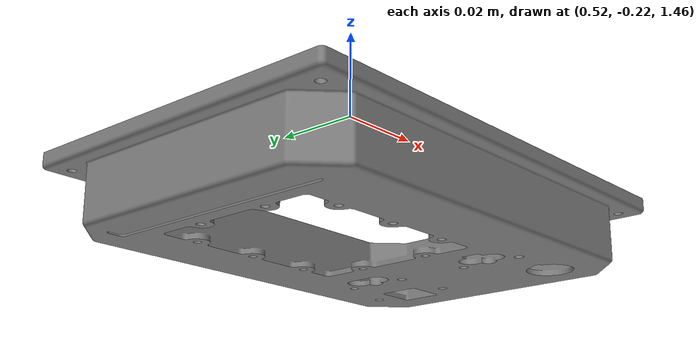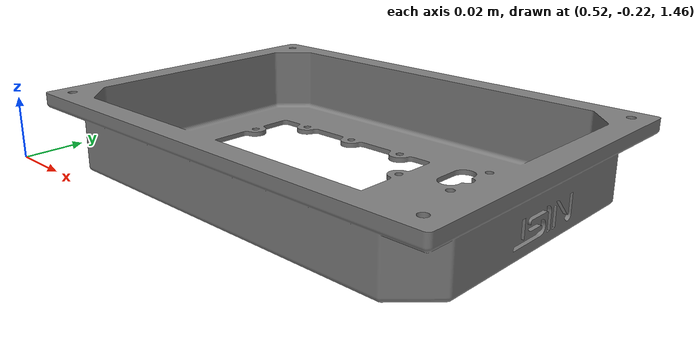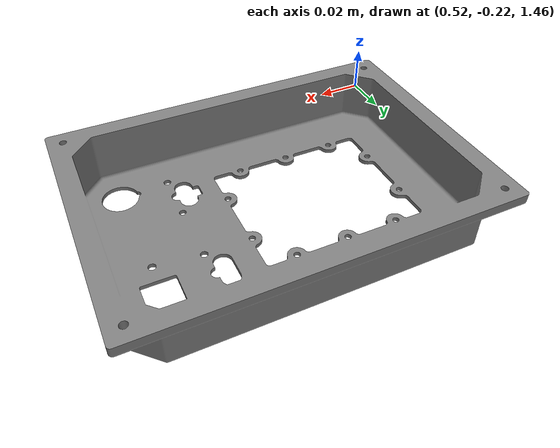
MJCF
<mujoco model="nist_ftc_08_asme1_sw1500_rc">
  <default>
    <default class="nist_lid_visual">
      <geom group="2" type="mesh" contype="0" conaffinity="0"/>
    </default>
    <default class="nist_lid_collision">
      <geom group="3" type="mesh" density="4800" friction="0.95 0.3 0.1" solimp="0.998 0.998 0.001" solref="0.0001 1" />
    </default>
  </default>
  <asset>
    <mesh name="nist_ftc_08_asme1_sw1500_rc" file="../objects/bigym/nist_misc/nist_ftc_08_asme1_sw1500_rc/nist_ftc_08_asme1_sw1500_rc.obj" scale="0.0005 0.0005 0.0005"/>
    <mesh name="nist_ftc_08_asme1_sw1500_rc_collision_0" file="../objects/bigym/nist_misc/nist_ftc_08_asme1_sw1500_rc/nist_ftc_08_asme1_sw1500_rc_collision_0.obj" scale="0.0005 0.0005 0.0005"/>
    <mesh name="nist_ftc_08_asme1_sw1500_rc_collision_1" file="../objects/bigym/nist_misc/nist_ftc_08_asme1_sw1500_rc/nist_ftc_08_asme1_sw1500_rc_collision_1.obj" scale="0.0005 0.0005 0.0005"/>
    <mesh name="nist_ftc_08_asme1_sw1500_rc_collision_2" file="../objects/bigym/nist_misc/nist_ftc_08_asme1_sw1500_rc/nist_ftc_08_asme1_sw1500_rc_collision_2.obj" scale="0.0005 0.0005 0.0005"/>
    <mesh name="nist_ftc_08_asme1_sw1500_rc_collision_3" file="../objects/bigym/nist_misc/nist_ftc_08_asme1_sw1500_rc/nist_ftc_08_asme1_sw1500_rc_collision_3.obj" scale="0.0005 0.0005 0.0005"/>
    <mesh name="nist_ftc_08_asme1_sw1500_rc_collision_4" file="../objects/bigym/nist_misc/nist_ftc_08_asme1_sw1500_rc/nist_ftc_08_asme1_sw1500_rc_collision_4.obj" scale="0.0005 0.0005 0.0005" />
    <mesh name="nist_ftc_08_asme1_sw1500_rc_collision_5" file="../objects/bigym/nist_misc/nist_ftc_08_asme1_sw1500_rc/nist_ftc_08_asme1_sw1500_rc_collision_5.obj" scale="0.0005 0.0005 0.0005"/>
  </asset>
  <worldbody>
    <body name="nist_ftc_08_asme1_sw1500_rc" pos="0.52 -0.1 1.48" quat="0 1 0 0">
      <freejoint/>
      <geom mesh="nist_ftc_08_asme1_sw1500_rc" class="nist_lid_visual"/>
      <geom mesh="nist_ftc_08_asme1_sw1500_rc_collision_0" rgba="0.7649019014136847 0.7479204475119976 0.23068717767425428 1" class="nist_lid_collision"/>
      <geom mesh="nist_ftc_08_asme1_sw1500_rc_collision_1" rgba="0.8206632600185385 0.2884064426189211 0.10911199197777588 1" class="nist_lid_collision"/>
      <geom mesh="nist_ftc_08_asme1_sw1500_rc_collision_2" rgba="0.6599792609209949 0.7390322039579112 0.22865202513366756 1" class="nist_lid_collision"/>
      <geom mesh="nist_ftc_08_asme1_sw1500_rc_collision_3" rgba="0.8493625589621616 0.8163457656425196 0.1291891524053428 1" class="nist_lid_collision"/>
      <geom mesh="nist_ftc_08_asme1_sw1500_rc_collision_4" rgba="0.4633042686150507 0.027760609776509293 0.04769883738781955 1" class="nist_lid_collision"/>
      <geom mesh="nist_ftc_08_asme1_sw1500_rc_collision_5" rgba="0.3412207603705123 0.8353955716807293 0.980994143512161 1" class="nist_lid_collision"/>
    </body>
  </worldbody>
</mujoco>
